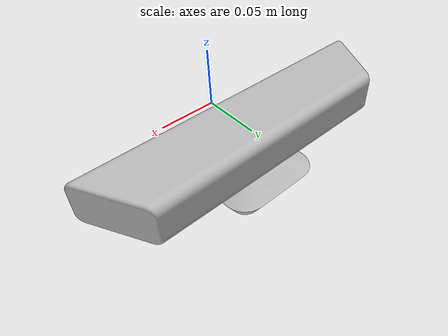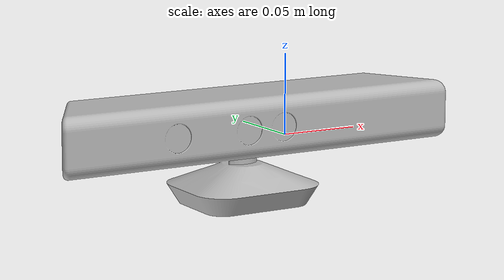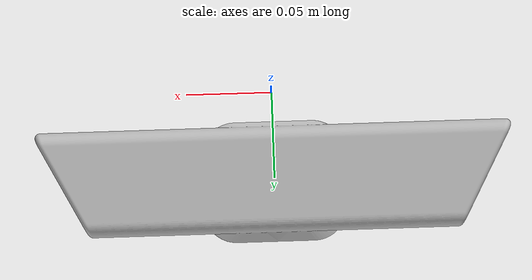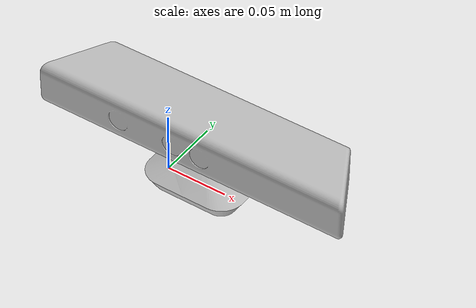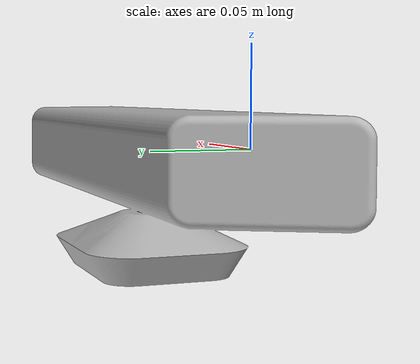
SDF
<?xml version='1.0'?>
<sdf version='1.6'>
  <model name="radar_demo">
      <link name = "base_link"> </link>
      <plugin name="mode_c_radar" filename="libModeCRadarPlugin.so">
        <robotNamespace>radar</robotNamespace>
        <position_noise>
          <noise>
            <type>gaussian</type>
            <mean>0.0</mean>
            <stddev>0.001</stddev>
          </noise>
        </position_noise>
      </plugin>
      <link name="radar_mount">
        <gravity>false</gravity>
        <inertial>
          <mass>0.1</mass>
          <inertia>
            <ixx>0.000166667</ixx>
            <iyy>0.000166667</iyy>
            <izz>0.000166667</izz>
          </inertia>
        </inertial>

        <collision name="collision">
          <pose>0 0.02 0 0 0 -1.5708</pose>
          <geometry>
            <mesh>
              <uri>model://kinect/meshes/kinect.dae</uri>
            </mesh>
          </geometry>
        </collision>
        <visual name="visual">
          <pose>0 0.02 0 0 0 -1.5708</pose>
          <geometry>
            <mesh>
              <uri>model://kinect/meshes/kinect.dae</uri>
            </mesh>
          </geometry>
        </visual>
        <sensor name="logical_camera" type="logical_camera">

          <logical_camera>
            <near>0.2</near>
            <far>2.0</far>
            <horizontal_fov>1.04719755</horizontal_fov>
            <aspect_ratio>1.778</aspect_ratio>
          </logical_camera>

          <visualize>true</visualize>
          <always_on>true</always_on>
          <update_rate>10</update_rate>
        </sensor>
      </link>
      <joint name='radar_mount_joint' type='fixed'>
        <child>radar_mount</child>
        <parent>base_link</parent>
      </joint>
  </model>
</sdf>
